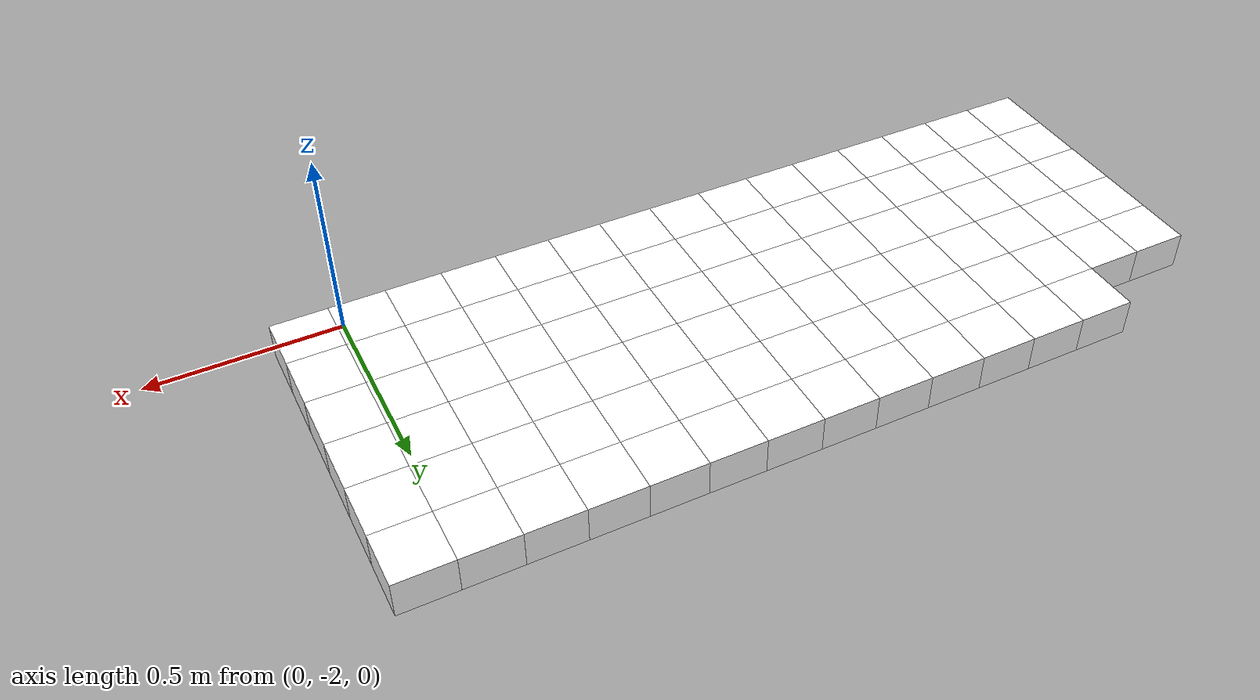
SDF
<sdf version="1.7">
 <world name="default">
  <include><uri>model://sun</uri></include>
  <model name="static_environment">
   <static>true</static>
   <link name="region_13">
    <pose>-2.0001735117499164 -1.349999992280428 0.0 0.0 0.0 4.7123</pose>
    <collision name="region_13_collision">
     <geometry><box><size>0.15 0.15 0.1</size></box></geometry>
     <surface><friction><ode><mu>1.0</mu><mu2>1.0</mu2></ode></friction></surface>
    </collision>
    <visual name="region_13_visual">
     <geometry><box><size>0.15 0.15 0.1</size></box></geometry>
     <material><ambient>1.0 1.0 1.0 1.0</ambient><diffuse>1.0 1.0 1.0 1.0</diffuse></material>
    </visual>
   </link>
   <link name="region_14">
    <pose>-2.000186858807602 -1.499999991686615 0.0 0.0 0.0 4.7123</pose>
    <collision name="region_14_collision">
     <geometry><box><size>0.15 0.15 0.1</size></box></geometry>
     <surface><friction><ode><mu>1.0</mu><mu2>1.0</mu2></ode></friction></surface>
    </collision>
    <visual name="region_14_visual">
     <geometry><box><size>0.15 0.15 0.1</size></box></geometry>
     <material><ambient>1.0 1.0 1.0 1.0</ambient><diffuse>1.0 1.0 1.0 1.0</diffuse></material>
    </visual>
   </link>
   <link name="region_15">
    <pose>-2.0002002058652883 -1.6499999910928018 0.0 0.0 0.0 4.7123</pose>
    <collision name="region_15_collision">
     <geometry><box><size>0.15 0.15 0.1</size></box></geometry>
     <surface><friction><ode><mu>1.0</mu><mu2>1.0</mu2></ode></friction></surface>
    </collision>
    <visual name="region_15_visual">
     <geometry><box><size>0.15 0.15 0.1</size></box></geometry>
     <material><ambient>1.0 1.0 1.0 1.0</ambient><diffuse>1.0 1.0 1.0 1.0</diffuse></material>
    </visual>
   </link>
   <link name="region_16">
    <pose>-2.000213552922974 -1.7999999904989883 0.0 0.0 0.0 4.7123</pose>
    <collision name="region_16_collision">
     <geometry><box><size>0.15 0.15 0.1</size></box></geometry>
     <surface><friction><ode><mu>1.0</mu><mu2>1.0</mu2></ode></friction></surface>
    </collision>
    <visual name="region_16_visual">
     <geometry><box><size>0.15 0.15 0.1</size></box></geometry>
     <material><ambient>1.0 1.0 1.0 1.0</ambient><diffuse>1.0 1.0 1.0 1.0</diffuse></material>
    </visual>
   </link>
   <link name="region_17">
    <pose>-2.00022689998066 -1.9499999899051752 0.0 0.0 0.0 4.7123</pose>
    <collision name="region_17_collision">
     <geometry><box><size>0.15 0.15 0.1</size></box></geometry>
     <surface><friction><ode><mu>1.0</mu><mu2>1.0</mu2></ode></friction></surface>
    </collision>
    <visual name="region_17_visual">
     <geometry><box><size>0.15 0.15 0.1</size></box></geometry>
     <material><ambient>1.0 1.0 1.0 1.0</ambient><diffuse>1.0 1.0 1.0 1.0</diffuse></material>
    </visual>
   </link>
   <link name="region_33">
    <pose>-1.8501735123437295 -1.3500133393381142 0.0 0.0 0.0 4.7123</pose>
    <collision name="region_33_collision">
     <geometry><box><size>0.15 0.15 0.1</size></box></geometry>
     <surface><friction><ode><mu>1.0</mu><mu2>1.0</mu2></ode></friction></surface>
    </collision>
    <visual name="region_33_visual">
     <geometry><box><size>0.15 0.15 0.1</size></box></geometry>
     <material><ambient>1.0 1.0 1.0 1.0</ambient><diffuse>1.0 1.0 1.0 1.0</diffuse></material>
    </visual>
   </link>
   <link name="region_34">
    <pose>-1.8501868594014155 -1.500013338744301 0.0 0.0 0.0 4.7123</pose>
    <collision name="region_34_collision">
     <geometry><box><size>0.15 0.15 0.1</size></box></geometry>
     <surface><friction><ode><mu>1.0</mu><mu2>1.0</mu2></ode></friction></surface>
    </collision>
    <visual name="region_34_visual">
     <geometry><box><size>0.15 0.15 0.1</size></box></geometry>
     <material><ambient>1.0 1.0 1.0 1.0</ambient><diffuse>1.0 1.0 1.0 1.0</diffuse></material>
    </visual>
   </link>
   <link name="region_35">
    <pose>-1.8502002064591014 -1.6500133381504876 0.0 0.0 0.0 4.7123</pose>
    <collision name="region_35_collision">
     <geometry><box><size>0.15 0.15 0.1</size></box></geometry>
     <surface><friction><ode><mu>1.0</mu><mu2>1.0</mu2></ode></friction></surface>
    </collision>
    <visual name="region_35_visual">
     <geometry><box><size>0.15 0.15 0.1</size></box></geometry>
     <material><ambient>1.0 1.0 1.0 1.0</ambient><diffuse>1.0 1.0 1.0 1.0</diffuse></material>
    </visual>
   </link>
   <link name="region_36">
    <pose>-1.8502135535167872 -1.8000133375566745 0.0 0.0 0.0 4.7123</pose>
    <collision name="region_36_collision">
     <geometry><box><size>0.15 0.15 0.1</size></box></geometry>
     <surface><friction><ode><mu>1.0</mu><mu2>1.0</mu2></ode></friction></surface>
    </collision>
    <visual name="region_36_visual">
     <geometry><box><size>0.15 0.15 0.1</size></box></geometry>
     <material><ambient>1.0 1.0 1.0 1.0</ambient><diffuse>1.0 1.0 1.0 1.0</diffuse></material>
    </visual>
   </link>
   <link name="region_37">
    <pose>-1.8502269005744731 -1.950013336962861 0.0 0.0 0.0 4.7123</pose>
    <collision name="region_37_collision">
     <geometry><box><size>0.15 0.15 0.1</size></box></geometry>
     <surface><friction><ode><mu>1.0</mu><mu2>1.0</mu2></ode></friction></surface>
    </collision>
    <visual name="region_37_visual">
     <geometry><box><size>0.15 0.15 0.1</size></box></geometry>
     <material><ambient>1.0 1.0 1.0 1.0</ambient><diffuse>1.0 1.0 1.0 1.0</diffuse></material>
    </visual>
   </link>
   <link name="region_52">
    <pose>-1.7001601658798569 -1.200026686989613 0.0 0.0 0.0 4.7123</pose>
    <collision name="region_52_collision">
     <geometry><box><size>0.15 0.15 0.1</size></box></geometry>
     <surface><friction><ode><mu>1.0</mu><mu2>1.0</mu2></ode></friction></surface>
    </collision>
    <visual name="region_52_visual">
     <geometry><box><size>0.15 0.15 0.1</size></box></geometry>
     <material><ambient>1.0 1.0 1.0 1.0</ambient><diffuse>1.0 1.0 1.0 1.0</diffuse></material>
    </visual>
   </link>
   <link name="region_53">
    <pose>-1.7001735129375428 -1.3500266863958 0.0 0.0 0.0 4.7123</pose>
    <collision name="region_53_collision">
     <geometry><box><size>0.15 0.15 0.1</size></box></geometry>
     <surface><friction><ode><mu>1.0</mu><mu2>1.0</mu2></ode></friction></surface>
    </collision>
    <visual name="region_53_visual">
     <geometry><box><size>0.15 0.15 0.1</size></box></geometry>
     <material><ambient>1.0 1.0 1.0 1.0</ambient><diffuse>1.0 1.0 1.0 1.0</diffuse></material>
    </visual>
   </link>
   <link name="region_54">
    <pose>-1.7001868599952288 -1.5000266858019868 0.0 0.0 0.0 4.7123</pose>
    <collision name="region_54_collision">
     <geometry><box><size>0.15 0.15 0.1</size></box></geometry>
     <surface><friction><ode><mu>1.0</mu><mu2>1.0</mu2></ode></friction></surface>
    </collision>
    <visual name="region_54_visual">
     <geometry><box><size>0.15 0.15 0.1</size></box></geometry>
     <material><ambient>1.0 1.0 1.0 1.0</ambient><diffuse>1.0 1.0 1.0 1.0</diffuse></material>
    </visual>
   </link>
   <link name="region_55">
    <pose>-1.7002002070529145 -1.6500266852081733 0.0 0.0 0.0 4.7123</pose>
    <collision name="region_55_collision">
     <geometry><box><size>0.15 0.15 0.1</size></box></geometry>
     <surface><friction><ode><mu>1.0</mu><mu2>1.0</mu2></ode></friction></surface>
    </collision>
    <visual name="region_55_visual">
     <geometry><box><size>0.15 0.15 0.1</size></box></geometry>
     <material><ambient>1.0 1.0 1.0 1.0</ambient><diffuse>1.0 1.0 1.0 1.0</diffuse></material>
    </visual>
   </link>
   <link name="region_56">
    <pose>-1.7002135541106005 -1.8000266846143602 0.0 0.0 0.0 4.7123</pose>
    <collision name="region_56_collision">
     <geometry><box><size>0.15 0.15 0.1</size></box></geometry>
     <surface><friction><ode><mu>1.0</mu><mu2>1.0</mu2></ode></friction></surface>
    </collision>
    <visual name="region_56_visual">
     <geometry><box><size>0.15 0.15 0.1</size></box></geometry>
     <material><ambient>1.0 1.0 1.0 1.0</ambient><diffuse>1.0 1.0 1.0 1.0</diffuse></material>
    </visual>
   </link>
   <link name="region_57">
    <pose>-1.7002269011682862 -1.9500266840205471 0.0 0.0 0.0 4.7123</pose>
    <collision name="region_57_collision">
     <geometry><box><size>0.15 0.15 0.1</size></box></geometry>
     <surface><friction><ode><mu>1.0</mu><mu2>1.0</mu2></ode></friction></surface>
    </collision>
    <visual name="region_57_visual">
     <geometry><box><size>0.15 0.15 0.1</size></box></geometry>
     <material><ambient>1.0 1.0 1.0 1.0</ambient><diffuse>1.0 1.0 1.0 1.0</diffuse></material>
    </visual>
   </link>
   <link name="region_72">
    <pose>-1.5501601664736702 -1.2000400340472992 0.0 0.0 0.0 4.7123</pose>
    <collision name="region_72_collision">
     <geometry><box><size>0.15 0.15 0.1</size></box></geometry>
     <surface><friction><ode><mu>1.0</mu><mu2>1.0</mu2></ode></friction></surface>
    </collision>
    <visual name="region_72_visual">
     <geometry><box><size>0.15 0.15 0.1</size></box></geometry>
     <material><ambient>1.0 1.0 1.0 1.0</ambient><diffuse>1.0 1.0 1.0 1.0</diffuse></material>
    </visual>
   </link>
   <link name="region_73">
    <pose>-1.550173513531356 -1.3500400334534857 0.0 0.0 0.0 4.7123</pose>
    <collision name="region_73_collision">
     <geometry><box><size>0.15 0.15 0.1</size></box></geometry>
     <surface><friction><ode><mu>1.0</mu><mu2>1.0</mu2></ode></friction></surface>
    </collision>
    <visual name="region_73_visual">
     <geometry><box><size>0.15 0.15 0.1</size></box></geometry>
     <material><ambient>1.0 1.0 1.0 1.0</ambient><diffuse>1.0 1.0 1.0 1.0</diffuse></material>
    </visual>
   </link>
   <link name="region_74">
    <pose>-1.5501868605890419 -1.5000400328596726 0.0 0.0 0.0 4.7123</pose>
    <collision name="region_74_collision">
     <geometry><box><size>0.15 0.15 0.1</size></box></geometry>
     <surface><friction><ode><mu>1.0</mu><mu2>1.0</mu2></ode></friction></surface>
    </collision>
    <visual name="region_74_visual">
     <geometry><box><size>0.15 0.15 0.1</size></box></geometry>
     <material><ambient>1.0 1.0 1.0 1.0</ambient><diffuse>1.0 1.0 1.0 1.0</diffuse></material>
    </visual>
   </link>
   <link name="region_75">
    <pose>-1.5502002076467276 -1.6500400322658595 0.0 0.0 0.0 4.7123</pose>
    <collision name="region_75_collision">
     <geometry><box><size>0.15 0.15 0.1</size></box></geometry>
     <surface><friction><ode><mu>1.0</mu><mu2>1.0</mu2></ode></friction></surface>
    </collision>
    <visual name="region_75_visual">
     <geometry><box><size>0.15 0.15 0.1</size></box></geometry>
     <material><ambient>1.0 1.0 1.0 1.0</ambient><diffuse>1.0 1.0 1.0 1.0</diffuse></material>
    </visual>
   </link>
   <link name="region_76">
    <pose>-1.5502135547044136 -1.800040031672046 0.0 0.0 0.0 4.7123</pose>
    <collision name="region_76_collision">
     <geometry><box><size>0.15 0.15 0.1</size></box></geometry>
     <surface><friction><ode><mu>1.0</mu><mu2>1.0</mu2></ode></friction></surface>
    </collision>
    <visual name="region_76_visual">
     <geometry><box><size>0.15 0.15 0.1</size></box></geometry>
     <material><ambient>1.0 1.0 1.0 1.0</ambient><diffuse>1.0 1.0 1.0 1.0</diffuse></material>
    </visual>
   </link>
   <link name="region_77">
    <pose>-1.5502269017620995 -1.9500400310782329 0.0 0.0 0.0 4.7123</pose>
    <collision name="region_77_collision">
     <geometry><box><size>0.15 0.15 0.1</size></box></geometry>
     <surface><friction><ode><mu>1.0</mu><mu2>1.0</mu2></ode></friction></surface>
    </collision>
    <visual name="region_77_visual">
     <geometry><box><size>0.15 0.15 0.1</size></box></geometry>
     <material><ambient>1.0 1.0 1.0 1.0</ambient><diffuse>1.0 1.0 1.0 1.0</diffuse></material>
    </visual>
   </link>
   <link name="region_92">
    <pose>-1.4001601670674833 -1.200053381104985 0.0 0.0 0.0 4.7123</pose>
    <collision name="region_92_collision">
     <geometry><box><size>0.15 0.15 0.1</size></box></geometry>
     <surface><friction><ode><mu>1.0</mu><mu2>1.0</mu2></ode></friction></surface>
    </collision>
    <visual name="region_92_visual">
     <geometry><box><size>0.15 0.15 0.1</size></box></geometry>
     <material><ambient>1.0 1.0 1.0 1.0</ambient><diffuse>1.0 1.0 1.0 1.0</diffuse></material>
    </visual>
   </link>
   <link name="region_93">
    <pose>-1.4001735141251692 -1.3500533805111719 0.0 0.0 0.0 4.7123</pose>
    <collision name="region_93_collision">
     <geometry><box><size>0.15 0.15 0.1</size></box></geometry>
     <surface><friction><ode><mu>1.0</mu><mu2>1.0</mu2></ode></friction></surface>
    </collision>
    <visual name="region_93_visual">
     <geometry><box><size>0.15 0.15 0.1</size></box></geometry>
     <material><ambient>1.0 1.0 1.0 1.0</ambient><diffuse>1.0 1.0 1.0 1.0</diffuse></material>
    </visual>
   </link>
   <link name="region_94">
    <pose>-1.400186861182855 -1.5000533799173583 0.0 0.0 0.0 4.7123</pose>
    <collision name="region_94_collision">
     <geometry><box><size>0.15 0.15 0.1</size></box></geometry>
     <surface><friction><ode><mu>1.0</mu><mu2>1.0</mu2></ode></friction></surface>
    </collision>
    <visual name="region_94_visual">
     <geometry><box><size>0.15 0.15 0.1</size></box></geometry>
     <material><ambient>1.0 1.0 1.0 1.0</ambient><diffuse>1.0 1.0 1.0 1.0</diffuse></material>
    </visual>
   </link>
   <link name="region_95">
    <pose>-1.400200208240541 -1.6500533793235452 0.0 0.0 0.0 4.7123</pose>
    <collision name="region_95_collision">
     <geometry><box><size>0.15 0.15 0.1</size></box></geometry>
     <surface><friction><ode><mu>1.0</mu><mu2>1.0</mu2></ode></friction></surface>
    </collision>
    <visual name="region_95_visual">
     <geometry><box><size>0.15 0.15 0.1</size></box></geometry>
     <material><ambient>1.0 1.0 1.0 1.0</ambient><diffuse>1.0 1.0 1.0 1.0</diffuse></material>
    </visual>
   </link>
   <link name="region_96">
    <pose>-1.4002135552982269 -1.8000533787297321 0.0 0.0 0.0 4.7123</pose>
    <collision name="region_96_collision">
     <geometry><box><size>0.15 0.15 0.1</size></box></geometry>
     <surface><friction><ode><mu>1.0</mu><mu2>1.0</mu2></ode></friction></surface>
    </collision>
    <visual name="region_96_visual">
     <geometry><box><size>0.15 0.15 0.1</size></box></geometry>
     <material><ambient>1.0 1.0 1.0 1.0</ambient><diffuse>1.0 1.0 1.0 1.0</diffuse></material>
    </visual>
   </link>
   <link name="region_97">
    <pose>-1.4002269023559126 -1.9500533781359186 0.0 0.0 0.0 4.7123</pose>
    <collision name="region_97_collision">
     <geometry><box><size>0.15 0.15 0.1</size></box></geometry>
     <surface><friction><ode><mu>1.0</mu><mu2>1.0</mu2></ode></friction></surface>
    </collision>
    <visual name="region_97_visual">
     <geometry><box><size>0.15 0.15 0.1</size></box></geometry>
     <material><ambient>1.0 1.0 1.0 1.0</ambient><diffuse>1.0 1.0 1.0 1.0</diffuse></material>
    </visual>
   </link>
   <link name="region_112">
    <pose>-1.2501601676612963 -1.2000667281626707 0.0 0.0 0.0 4.7123</pose>
    <collision name="region_112_collision">
     <geometry><box><size>0.15 0.15 0.1</size></box></geometry>
     <surface><friction><ode><mu>1.0</mu><mu2>1.0</mu2></ode></friction></surface>
    </collision>
    <visual name="region_112_visual">
     <geometry><box><size>0.15 0.15 0.1</size></box></geometry>
     <material><ambient>1.0 1.0 1.0 1.0</ambient><diffuse>1.0 1.0 1.0 1.0</diffuse></material>
    </visual>
   </link>
   <link name="region_113">
    <pose>-1.2501735147189823 -1.3500667275688576 0.0 0.0 0.0 4.7123</pose>
    <collision name="region_113_collision">
     <geometry><box><size>0.15 0.15 0.1</size></box></geometry>
     <surface><friction><ode><mu>1.0</mu><mu2>1.0</mu2></ode></friction></surface>
    </collision>
    <visual name="region_113_visual">
     <geometry><box><size>0.15 0.15 0.1</size></box></geometry>
     <material><ambient>1.0 1.0 1.0 1.0</ambient><diffuse>1.0 1.0 1.0 1.0</diffuse></material>
    </visual>
   </link>
   <link name="region_114">
    <pose>-1.250186861776668 -1.5000667269750445 0.0 0.0 0.0 4.7123</pose>
    <collision name="region_114_collision">
     <geometry><box><size>0.15 0.15 0.1</size></box></geometry>
     <surface><friction><ode><mu>1.0</mu><mu2>1.0</mu2></ode></friction></surface>
    </collision>
    <visual name="region_114_visual">
     <geometry><box><size>0.15 0.15 0.1</size></box></geometry>
     <material><ambient>1.0 1.0 1.0 1.0</ambient><diffuse>1.0 1.0 1.0 1.0</diffuse></material>
    </visual>
   </link>
   <link name="region_115">
    <pose>-1.250200208834354 -1.650066726381231 0.0 0.0 0.0 4.7123</pose>
    <collision name="region_115_collision">
     <geometry><box><size>0.15 0.15 0.1</size></box></geometry>
     <surface><friction><ode><mu>1.0</mu><mu2>1.0</mu2></ode></friction></surface>
    </collision>
    <visual name="region_115_visual">
     <geometry><box><size>0.15 0.15 0.1</size></box></geometry>
     <material><ambient>1.0 1.0 1.0 1.0</ambient><diffuse>1.0 1.0 1.0 1.0</diffuse></material>
    </visual>
   </link>
   <link name="region_116">
    <pose>-1.25021355589204 -1.8000667257874179 0.0 0.0 0.0 4.7123</pose>
    <collision name="region_116_collision">
     <geometry><box><size>0.15 0.15 0.1</size></box></geometry>
     <surface><friction><ode><mu>1.0</mu><mu2>1.0</mu2></ode></friction></surface>
    </collision>
    <visual name="region_116_visual">
     <geometry><box><size>0.15 0.15 0.1</size></box></geometry>
     <material><ambient>1.0 1.0 1.0 1.0</ambient><diffuse>1.0 1.0 1.0 1.0</diffuse></material>
    </visual>
   </link>
   <link name="region_117">
    <pose>-1.2502269029497257 -1.9500667251936044 0.0 0.0 0.0 4.7123</pose>
    <collision name="region_117_collision">
     <geometry><box><size>0.15 0.15 0.1</size></box></geometry>
     <surface><friction><ode><mu>1.0</mu><mu2>1.0</mu2></ode></friction></surface>
    </collision>
    <visual name="region_117_visual">
     <geometry><box><size>0.15 0.15 0.1</size></box></geometry>
     <material><ambient>1.0 1.0 1.0 1.0</ambient><diffuse>1.0 1.0 1.0 1.0</diffuse></material>
    </visual>
   </link>
   <link name="region_132">
    <pose>-1.1001601682551096 -1.2000800752203569 0.0 0.0 0.0 4.7123</pose>
    <collision name="region_132_collision">
     <geometry><box><size>0.15 0.15 0.1</size></box></geometry>
     <surface><friction><ode><mu>1.0</mu><mu2>1.0</mu2></ode></friction></surface>
    </collision>
    <visual name="region_132_visual">
     <geometry><box><size>0.15 0.15 0.1</size></box></geometry>
     <material><ambient>1.0 1.0 1.0 1.0</ambient><diffuse>1.0 1.0 1.0 1.0</diffuse></material>
    </visual>
   </link>
   <link name="region_133">
    <pose>-1.1001735153127954 -1.3500800746265433 0.0 0.0 0.0 4.7123</pose>
    <collision name="region_133_collision">
     <geometry><box><size>0.15 0.15 0.1</size></box></geometry>
     <surface><friction><ode><mu>1.0</mu><mu2>1.0</mu2></ode></friction></surface>
    </collision>
    <visual name="region_133_visual">
     <geometry><box><size>0.15 0.15 0.1</size></box></geometry>
     <material><ambient>1.0 1.0 1.0 1.0</ambient><diffuse>1.0 1.0 1.0 1.0</diffuse></material>
    </visual>
   </link>
   <link name="region_134">
    <pose>-1.1001868623704814 -1.5000800740327302 0.0 0.0 0.0 4.7123</pose>
    <collision name="region_134_collision">
     <geometry><box><size>0.15 0.15 0.1</size></box></geometry>
     <surface><friction><ode><mu>1.0</mu><mu2>1.0</mu2></ode></friction></surface>
    </collision>
    <visual name="region_134_visual">
     <geometry><box><size>0.15 0.15 0.1</size></box></geometry>
     <material><ambient>1.0 1.0 1.0 1.0</ambient><diffuse>1.0 1.0 1.0 1.0</diffuse></material>
    </visual>
   </link>
   <link name="region_135">
    <pose>-1.1002002094281673 -1.6500800734389172 0.0 0.0 0.0 4.7123</pose>
    <collision name="region_135_collision">
     <geometry><box><size>0.15 0.15 0.1</size></box></geometry>
     <surface><friction><ode><mu>1.0</mu><mu2>1.0</mu2></ode></friction></surface>
    </collision>
    <visual name="region_135_visual">
     <geometry><box><size>0.15 0.15 0.1</size></box></geometry>
     <material><ambient>1.0 1.0 1.0 1.0</ambient><diffuse>1.0 1.0 1.0 1.0</diffuse></material>
    </visual>
   </link>
   <link name="region_136">
    <pose>-1.100213556485853 -1.8000800728451036 0.0 0.0 0.0 4.7123</pose>
    <collision name="region_136_collision">
     <geometry><box><size>0.15 0.15 0.1</size></box></geometry>
     <surface><friction><ode><mu>1.0</mu><mu2>1.0</mu2></ode></friction></surface>
    </collision>
    <visual name="region_136_visual">
     <geometry><box><size>0.15 0.15 0.1</size></box></geometry>
     <material><ambient>1.0 1.0 1.0 1.0</ambient><diffuse>1.0 1.0 1.0 1.0</diffuse></material>
    </visual>
   </link>
   <link name="region_137">
    <pose>-1.100226903543539 -1.9500800722512905 0.0 0.0 0.0 4.7123</pose>
    <collision name="region_137_collision">
     <geometry><box><size>0.15 0.15 0.1</size></box></geometry>
     <surface><friction><ode><mu>1.0</mu><mu2>1.0</mu2></ode></friction></surface>
    </collision>
    <visual name="region_137_visual">
     <geometry><box><size>0.15 0.15 0.1</size></box></geometry>
     <material><ambient>1.0 1.0 1.0 1.0</ambient><diffuse>1.0 1.0 1.0 1.0</diffuse></material>
    </visual>
   </link>
   <link name="region_152">
    <pose>-0.9501601688489227 -1.2000934222780426 0.0 0.0 0.0 4.7123</pose>
    <collision name="region_152_collision">
     <geometry><box><size>0.15 0.15 0.1</size></box></geometry>
     <surface><friction><ode><mu>1.0</mu><mu2>1.0</mu2></ode></friction></surface>
    </collision>
    <visual name="region_152_visual">
     <geometry><box><size>0.15 0.15 0.1</size></box></geometry>
     <material><ambient>1.0 1.0 1.0 1.0</ambient><diffuse>1.0 1.0 1.0 1.0</diffuse></material>
    </visual>
   </link>
   <link name="region_153">
    <pose>-0.9501735159066087 -1.3500934216842295 0.0 0.0 0.0 4.7123</pose>
    <collision name="region_153_collision">
     <geometry><box><size>0.15 0.15 0.1</size></box></geometry>
     <surface><friction><ode><mu>1.0</mu><mu2>1.0</mu2></ode></friction></surface>
    </collision>
    <visual name="region_153_visual">
     <geometry><box><size>0.15 0.15 0.1</size></box></geometry>
     <material><ambient>1.0 1.0 1.0 1.0</ambient><diffuse>1.0 1.0 1.0 1.0</diffuse></material>
    </visual>
   </link>
   <link name="region_154">
    <pose>-0.9501868629642944 -1.500093421090416 0.0 0.0 0.0 4.7123</pose>
    <collision name="region_154_collision">
     <geometry><box><size>0.15 0.15 0.1</size></box></geometry>
     <surface><friction><ode><mu>1.0</mu><mu2>1.0</mu2></ode></friction></surface>
    </collision>
    <visual name="region_154_visual">
     <geometry><box><size>0.15 0.15 0.1</size></box></geometry>
     <material><ambient>1.0 1.0 1.0 1.0</ambient><diffuse>1.0 1.0 1.0 1.0</diffuse></material>
    </visual>
   </link>
   <link name="region_155">
    <pose>-0.9502002100219804 -1.650093420496603 0.0 0.0 0.0 4.7123</pose>
    <collision name="region_155_collision">
     <geometry><box><size>0.15 0.15 0.1</size></box></geometry>
     <surface><friction><ode><mu>1.0</mu><mu2>1.0</mu2></ode></friction></surface>
    </collision>
    <visual name="region_155_visual">
     <geometry><box><size>0.15 0.15 0.1</size></box></geometry>
     <material><ambient>1.0 1.0 1.0 1.0</ambient><diffuse>1.0 1.0 1.0 1.0</diffuse></material>
    </visual>
   </link>
   <link name="region_156">
    <pose>-0.9502135570796664 -1.8000934199027898 0.0 0.0 0.0 4.7123</pose>
    <collision name="region_156_collision">
     <geometry><box><size>0.15 0.15 0.1</size></box></geometry>
     <surface><friction><ode><mu>1.0</mu><mu2>1.0</mu2></ode></friction></surface>
    </collision>
    <visual name="region_156_visual">
     <geometry><box><size>0.15 0.15 0.1</size></box></geometry>
     <material><ambient>1.0 1.0 1.0 1.0</ambient><diffuse>1.0 1.0 1.0 1.0</diffuse></material>
    </visual>
   </link>
   <link name="region_157">
    <pose>-0.9502269041373521 -1.9500934193089763 0.0 0.0 0.0 4.7123</pose>
    <collision name="region_157_collision">
     <geometry><box><size>0.15 0.15 0.1</size></box></geometry>
     <surface><friction><ode><mu>1.0</mu><mu2>1.0</mu2></ode></friction></surface>
    </collision>
    <visual name="region_157_visual">
     <geometry><box><size>0.15 0.15 0.1</size></box></geometry>
     <material><ambient>1.0 1.0 1.0 1.0</ambient><diffuse>1.0 1.0 1.0 1.0</diffuse></material>
    </visual>
   </link>
   <link name="region_172">
    <pose>-0.800160169442736 -1.2001067693357284 0.0 0.0 0.0 4.7123</pose>
    <collision name="region_172_collision">
     <geometry><box><size>0.15 0.15 0.1</size></box></geometry>
     <surface><friction><ode><mu>1.0</mu><mu2>1.0</mu2></ode></friction></surface>
    </collision>
    <visual name="region_172_visual">
     <geometry><box><size>0.15 0.15 0.1</size></box></geometry>
     <material><ambient>1.0 1.0 1.0 1.0</ambient><diffuse>1.0 1.0 1.0 1.0</diffuse></material>
    </visual>
   </link>
   <link name="region_173">
    <pose>-0.800173516500422 -1.3501067687419153 0.0 0.0 0.0 4.7123</pose>
    <collision name="region_173_collision">
     <geometry><box><size>0.15 0.15 0.1</size></box></geometry>
     <surface><friction><ode><mu>1.0</mu><mu2>1.0</mu2></ode></friction></surface>
    </collision>
    <visual name="region_173_visual">
     <geometry><box><size>0.15 0.15 0.1</size></box></geometry>
     <material><ambient>1.0 1.0 1.0 1.0</ambient><diffuse>1.0 1.0 1.0 1.0</diffuse></material>
    </visual>
   </link>
   <link name="region_174">
    <pose>-0.8001868635581078 -1.5001067681481022 0.0 0.0 0.0 4.7123</pose>
    <collision name="region_174_collision">
     <geometry><box><size>0.15 0.15 0.1</size></box></geometry>
     <surface><friction><ode><mu>1.0</mu><mu2>1.0</mu2></ode></friction></surface>
    </collision>
    <visual name="region_174_visual">
     <geometry><box><size>0.15 0.15 0.1</size></box></geometry>
     <material><ambient>1.0 1.0 1.0 1.0</ambient><diffuse>1.0 1.0 1.0 1.0</diffuse></material>
    </visual>
   </link>
   <link name="region_175">
    <pose>-0.8002002106157937 -1.6501067675542886 0.0 0.0 0.0 4.7123</pose>
    <collision name="region_175_collision">
     <geometry><box><size>0.15 0.15 0.1</size></box></geometry>
     <surface><friction><ode><mu>1.0</mu><mu2>1.0</mu2></ode></friction></surface>
    </collision>
    <visual name="region_175_visual">
     <geometry><box><size>0.15 0.15 0.1</size></box></geometry>
     <material><ambient>1.0 1.0 1.0 1.0</ambient><diffuse>1.0 1.0 1.0 1.0</diffuse></material>
    </visual>
   </link>
   <link name="region_176">
    <pose>-0.8002135576734797 -1.8001067669604756 0.0 0.0 0.0 4.7123</pose>
    <collision name="region_176_collision">
     <geometry><box><size>0.15 0.15 0.1</size></box></geometry>
     <surface><friction><ode><mu>1.0</mu><mu2>1.0</mu2></ode></friction></surface>
    </collision>
    <visual name="region_176_visual">
     <geometry><box><size>0.15 0.15 0.1</size></box></geometry>
     <material><ambient>1.0 1.0 1.0 1.0</ambient><diffuse>1.0 1.0 1.0 1.0</diffuse></material>
    </visual>
   </link>
   <link name="region_177">
    <pose>-0.8002269047311654 -1.950106766366662 0.0 0.0 0.0 4.7123</pose>
    <collision name="region_177_collision">
     <geometry><box><size>0.15 0.15 0.1</size></box></geometry>
     <surface><friction><ode><mu>1.0</mu><mu2>1.0</mu2></ode></friction></surface>
    </collision>
    <visual name="region_177_visual">
     <geometry><box><size>0.15 0.15 0.1</size></box></geometry>
     <material><ambient>1.0 1.0 1.0 1.0</ambient><diffuse>1.0 1.0 1.0 1.0</diffuse></material>
    </visual>
   </link>
   <link name="region_192">
    <pose>-0.6501601700365491 -1.2001201163934145 0.0 0.0 0.0 4.7123</pose>
    <collision name="region_192_collision">
     <geometry><box><size>0.15 0.15 0.1</size></box></geometry>
     <surface><friction><ode><mu>1.0</mu><mu2>1.0</mu2></ode></friction></surface>
    </collision>
    <visual name="region_192_visual">
     <geometry><box><size>0.15 0.15 0.1</size></box></geometry>
     <material><ambient>1.0 1.0 1.0 1.0</ambient><diffuse>1.0 1.0 1.0 1.0</diffuse></material>
    </visual>
   </link>
   <link name="region_193">
    <pose>-0.6501735170942351 -1.350120115799601 0.0 0.0 0.0 4.7123</pose>
    <collision name="region_193_collision">
     <geometry><box><size>0.15 0.15 0.1</size></box></geometry>
     <surface><friction><ode><mu>1.0</mu><mu2>1.0</mu2></ode></friction></surface>
    </collision>
    <visual name="region_193_visual">
     <geometry><box><size>0.15 0.15 0.1</size></box></geometry>
     <material><ambient>1.0 1.0 1.0 1.0</ambient><diffuse>1.0 1.0 1.0 1.0</diffuse></material>
    </visual>
   </link>
   <link name="region_194">
    <pose>-0.6501868641519208 -1.500120115205788 0.0 0.0 0.0 4.7123</pose>
    <collision name="region_194_collision">
     <geometry><box><size>0.15 0.15 0.1</size></box></geometry>
     <surface><friction><ode><mu>1.0</mu><mu2>1.0</mu2></ode></friction></surface>
    </collision>
    <visual name="region_194_visual">
     <geometry><box><size>0.15 0.15 0.1</size></box></geometry>
     <material><ambient>1.0 1.0 1.0 1.0</ambient><diffuse>1.0 1.0 1.0 1.0</diffuse></material>
    </visual>
   </link>
   <link name="region_195">
    <pose>-0.6502002112096068 -1.6501201146119748 0.0 0.0 0.0 4.7123</pose>
    <collision name="region_195_collision">
     <geometry><box><size>0.15 0.15 0.1</size></box></geometry>
     <surface><friction><ode><mu>1.0</mu><mu2>1.0</mu2></ode></friction></surface>
    </collision>
    <visual name="region_195_visual">
     <geometry><box><size>0.15 0.15 0.1</size></box></geometry>
     <material><ambient>1.0 1.0 1.0 1.0</ambient><diffuse>1.0 1.0 1.0 1.0</diffuse></material>
    </visual>
   </link>
   <link name="region_196">
    <pose>-0.6502135582672928 -1.8001201140181613 0.0 0.0 0.0 4.7123</pose>
    <collision name="region_196_collision">
     <geometry><box><size>0.15 0.15 0.1</size></box></geometry>
     <surface><friction><ode><mu>1.0</mu><mu2>1.0</mu2></ode></friction></surface>
    </collision>
    <visual name="region_196_visual">
     <geometry><box><size>0.15 0.15 0.1</size></box></geometry>
     <material><ambient>1.0 1.0 1.0 1.0</ambient><diffuse>1.0 1.0 1.0 1.0</diffuse></material>
    </visual>
   </link>
   <link name="region_197">
    <pose>-0.6502269053249785 -1.9501201134243482 0.0 0.0 0.0 4.7123</pose>
    <collision name="region_197_collision">
     <geometry><box><size>0.15 0.15 0.1</size></box></geometry>
     <surface><friction><ode><mu>1.0</mu><mu2>1.0</mu2></ode></friction></surface>
    </collision>
    <visual name="region_197_visual">
     <geometry><box><size>0.15 0.15 0.1</size></box></geometry>
     <material><ambient>1.0 1.0 1.0 1.0</ambient><diffuse>1.0 1.0 1.0 1.0</diffuse></material>
    </visual>
   </link>
   <link name="region_212">
    <pose>-0.5001601706303624 -1.2001334634511003 0.0 0.0 0.0 4.7123</pose>
    <collision name="region_212_collision">
     <geometry><box><size>0.15 0.15 0.1</size></box></geometry>
     <surface><friction><ode><mu>1.0</mu><mu2>1.0</mu2></ode></friction></surface>
    </collision>
    <visual name="region_212_visual">
     <geometry><box><size>0.15 0.15 0.1</size></box></geometry>
     <material><ambient>1.0 1.0 1.0 1.0</ambient><diffuse>1.0 1.0 1.0 1.0</diffuse></material>
    </visual>
   </link>
   <link name="region_213">
    <pose>-0.5001735176880484 -1.3501334628572867 0.0 0.0 0.0 4.7123</pose>
    <collision name="region_213_collision">
     <geometry><box><size>0.15 0.15 0.1</size></box></geometry>
     <surface><friction><ode><mu>1.0</mu><mu2>1.0</mu2></ode></friction></surface>
    </collision>
    <visual name="region_213_visual">
     <geometry><box><size>0.15 0.15 0.1</size></box></geometry>
     <material><ambient>1.0 1.0 1.0 1.0</ambient><diffuse>1.0 1.0 1.0 1.0</diffuse></material>
    </visual>
   </link>
   <link name="region_214">
    <pose>-0.5001868647457341 -1.5001334622634737 0.0 0.0 0.0 4.7123</pose>
    <collision name="region_214_collision">
     <geometry><box><size>0.15 0.15 0.1</size></box></geometry>
     <surface><friction><ode><mu>1.0</mu><mu2>1.0</mu2></ode></friction></surface>
    </collision>
    <visual name="region_214_visual">
     <geometry><box><size>0.15 0.15 0.1</size></box></geometry>
     <material><ambient>1.0 1.0 1.0 1.0</ambient><diffuse>1.0 1.0 1.0 1.0</diffuse></material>
    </visual>
   </link>
   <link name="region_215">
    <pose>-0.5002002118034201 -1.6501334616696606 0.0 0.0 0.0 4.7123</pose>
    <collision name="region_215_collision">
     <geometry><box><size>0.15 0.15 0.1</size></box></geometry>
     <surface><friction><ode><mu>1.0</mu><mu2>1.0</mu2></ode></friction></surface>
    </collision>
    <visual name="region_215_visual">
     <geometry><box><size>0.15 0.15 0.1</size></box></geometry>
     <material><ambient>1.0 1.0 1.0 1.0</ambient><diffuse>1.0 1.0 1.0 1.0</diffuse></material>
    </visual>
   </link>
   <link name="region_216">
    <pose>-0.5002135588611061 -1.800133461075847 0.0 0.0 0.0 4.7123</pose>
    <collision name="region_216_collision">
     <geometry><box><size>0.15 0.15 0.1</size></box></geometry>
     <surface><friction><ode><mu>1.0</mu><mu2>1.0</mu2></ode></friction></surface>
    </collision>
    <visual name="region_216_visual">
     <geometry><box><size>0.15 0.15 0.1</size></box></geometry>
     <material><ambient>1.0 1.0 1.0 1.0</ambient><diffuse>1.0 1.0 1.0 1.0</diffuse></material>
    </visual>
   </link>
   <link name="region_217">
    <pose>-0.5002269059187918 -1.950133460482034 0.0 0.0 0.0 4.7123</pose>
    <collision name="region_217_collision">
     <geometry><box><size>0.15 0.15 0.1</size></box></geometry>
     <surface><friction><ode><mu>1.0</mu><mu2>1.0</mu2></ode></friction></surface>
    </collision>
    <visual name="region_217_visual">
     <geometry><box><size>0.15 0.15 0.1</size></box></geometry>
     <material><ambient>1.0 1.0 1.0 1.0</ambient><diffuse>1.0 1.0 1.0 1.0</diffuse></material>
    </visual>
   </link>
   <link name="region_232">
    <pose>-0.35016017122417575 -1.200146810508786 0.0 0.0 0.0 4.7123</pose>
    <collision name="region_232_collision">
     <geometry><box><size>0.15 0.15 0.1</size></box></geometry>
     <surface><friction><ode><mu>1.0</mu><mu2>1.0</mu2></ode></friction></surface>
    </collision>
    <visual name="region_232_visual">
     <geometry><box><size>0.15 0.15 0.1</size></box></geometry>
     <material><ambient>1.0 1.0 1.0 1.0</ambient><diffuse>1.0 1.0 1.0 1.0</diffuse></material>
    </visual>
   </link>
   <link name="region_233">
    <pose>-0.3501735182818617 -1.350146809914973 0.0 0.0 0.0 4.7123</pose>
    <collision name="region_233_collision">
     <geometry><box><size>0.15 0.15 0.1</size></box></geometry>
     <surface><friction><ode><mu>1.0</mu><mu2>1.0</mu2></ode></friction></surface>
    </collision>
    <visual name="region_233_visual">
     <geometry><box><size>0.15 0.15 0.1</size></box></geometry>
     <material><ambient>1.0 1.0 1.0 1.0</ambient><diffuse>1.0 1.0 1.0 1.0</diffuse></material>
    </visual>
   </link>
   <link name="region_234">
    <pose>-0.35018686533954746 -1.5001468093211598 0.0 0.0 0.0 4.7123</pose>
    <collision name="region_234_collision">
     <geometry><box><size>0.15 0.15 0.1</size></box></geometry>
     <surface><friction><ode><mu>1.0</mu><mu2>1.0</mu2></ode></friction></surface>
    </collision>
    <visual name="region_234_visual">
     <geometry><box><size>0.15 0.15 0.1</size></box></geometry>
     <material><ambient>1.0 1.0 1.0 1.0</ambient><diffuse>1.0 1.0 1.0 1.0</diffuse></material>
    </visual>
   </link>
   <link name="region_235">
    <pose>-0.3502002123972334 -1.6501468087273463 0.0 0.0 0.0 4.7123</pose>
    <collision name="region_235_collision">
     <geometry><box><size>0.15 0.15 0.1</size></box></geometry>
     <surface><friction><ode><mu>1.0</mu><mu2>1.0</mu2></ode></friction></surface>
    </collision>
    <visual name="region_235_visual">
     <geometry><box><size>0.15 0.15 0.1</size></box></geometry>
     <material><ambient>1.0 1.0 1.0 1.0</ambient><diffuse>1.0 1.0 1.0 1.0</diffuse></material>
    </visual>
   </link>
   <link name="region_236">
    <pose>-0.3502135594549194 -1.8001468081335332 0.0 0.0 0.0 4.7123</pose>
    <collision name="region_236_collision">
     <geometry><box><size>0.15 0.15 0.1</size></box></geometry>
     <surface><friction><ode><mu>1.0</mu><mu2>1.0</mu2></ode></friction></surface>
    </collision>
    <visual name="region_236_visual">
     <geometry><box><size>0.15 0.15 0.1</size></box></geometry>
     <material><ambient>1.0 1.0 1.0 1.0</ambient><diffuse>1.0 1.0 1.0 1.0</diffuse></material>
    </visual>
   </link>
   <link name="region_237">
    <pose>-0.35022690651260513 -1.9501468075397197 0.0 0.0 0.0 4.7123</pose>
    <collision name="region_237_collision">
     <geometry><box><size>0.15 0.15 0.1</size></box></geometry>
     <surface><friction><ode><mu>1.0</mu><mu2>1.0</mu2></ode></friction></surface>
    </collision>
    <visual name="region_237_visual">
     <geometry><box><size>0.15 0.15 0.1</size></box></geometry>
     <material><ambient>1.0 1.0 1.0 1.0</ambient><diffuse>1.0 1.0 1.0 1.0</diffuse></material>
    </visual>
   </link>
   <link name="region_252">
    <pose>-0.20016017181798906 -1.2001601575664718 0.0 0.0 0.0 4.7123</pose>
    <collision name="region_252_collision">
     <geometry><box><size>0.15 0.15 0.1</size></box></geometry>
     <surface><friction><ode><mu>1.0</mu><mu2>1.0</mu2></ode></friction></surface>
    </collision>
    <visual name="region_252_visual">
     <geometry><box><size>0.15 0.15 0.1</size></box></geometry>
     <material><ambient>1.0 1.0 1.0 1.0</ambient><diffuse>1.0 1.0 1.0 1.0</diffuse></material>
    </visual>
   </link>
   <link name="region_253">
    <pose>-0.20017351887567503 -1.3501601569726587 0.0 0.0 0.0 4.7123</pose>
    <collision name="region_253_collision">
     <geometry><box><size>0.15 0.15 0.1</size></box></geometry>
     <surface><friction><ode><mu>1.0</mu><mu2>1.0</mu2></ode></friction></surface>
    </collision>
    <visual name="region_253_visual">
     <geometry><box><size>0.15 0.15 0.1</size></box></geometry>
     <material><ambient>1.0 1.0 1.0 1.0</ambient><diffuse>1.0 1.0 1.0 1.0</diffuse></material>
    </visual>
   </link>
   <link name="region_254">
    <pose>-0.20018686593336077 -1.5001601563788456 0.0 0.0 0.0 4.7123</pose>
    <collision name="region_254_collision">
     <geometry><box><size>0.15 0.15 0.1</size></box></geometry>
     <surface><friction><ode><mu>1.0</mu><mu2>1.0</mu2></ode></friction></surface>
    </collision>
    <visual name="region_254_visual">
     <geometry><box><size>0.15 0.15 0.1</size></box></geometry>
     <material><ambient>1.0 1.0 1.0 1.0</ambient><diffuse>1.0 1.0 1.0 1.0</diffuse></material>
    </visual>
   </link>
   <link name="region_255">
    <pose>-0.20020021299104673 -1.650160155785032 0.0 0.0 0.0 4.7123</pose>
    <collision name="region_255_collision">
     <geometry><box><size>0.15 0.15 0.1</size></box></geometry>
     <surface><friction><ode><mu>1.0</mu><mu2>1.0</mu2></ode></friction></surface>
    </collision>
    <visual name="region_255_visual">
     <geometry><box><size>0.15 0.15 0.1</size></box></geometry>
     <material><ambient>1.0 1.0 1.0 1.0</ambient><diffuse>1.0 1.0 1.0 1.0</diffuse></material>
    </visual>
   </link>
   <link name="region_256">
    <pose>-0.2002135600487327 -1.800160155191219 0.0 0.0 0.0 4.7123</pose>
    <collision name="region_256_collision">
     <geometry><box><size>0.15 0.15 0.1</size></box></geometry>
     <surface><friction><ode><mu>1.0</mu><mu2>1.0</mu2></ode></friction></surface>
    </collision>
    <visual name="region_256_visual">
     <geometry><box><size>0.15 0.15 0.1</size></box></geometry>
     <material><ambient>1.0 1.0 1.0 1.0</ambient><diffuse>1.0 1.0 1.0 1.0</diffuse></material>
    </visual>
   </link>
   <link name="region_257">
    <pose>-0.20022690710641844 -1.9501601545974059 0.0 0.0 0.0 4.7123</pose>
    <collision name="region_257_collision">
     <geometry><box><size>0.15 0.15 0.1</size></box></geometry>
     <surface><friction><ode><mu>1.0</mu><mu2>1.0</mu2></ode></friction></surface>
    </collision>
    <visual name="region_257_visual">
     <geometry><box><size>0.15 0.15 0.1</size></box></geometry>
     <material><ambient>1.0 1.0 1.0 1.0</ambient><diffuse>1.0 1.0 1.0 1.0</diffuse></material>
    </visual>
   </link>
   <link name="region_272">
    <pose>-0.05016017241180237 -1.200173504624158 0.0 0.0 0.0 4.7123</pose>
    <collision name="region_272_collision">
     <geometry><box><size>0.15 0.15 0.1</size></box></geometry>
     <surface><friction><ode><mu>1.0</mu><mu2>1.0</mu2></ode></friction></surface>
    </collision>
    <visual name="region_272_visual">
     <geometry><box><size>0.15 0.15 0.1</size></box></geometry>
     <material><ambient>1.0 1.0 1.0 1.0</ambient><diffuse>1.0 1.0 1.0 1.0</diffuse></material>
    </visual>
   </link>
   <link name="region_273">
    <pose>-0.05017351946948834 -1.3501735040303444 0.0 0.0 0.0 4.7123</pose>
    <collision name="region_273_collision">
     <geometry><box><size>0.15 0.15 0.1</size></box></geometry>
     <surface><friction><ode><mu>1.0</mu><mu2>1.0</mu2></ode></friction></surface>
    </collision>
    <visual name="region_273_visual">
     <geometry><box><size>0.15 0.15 0.1</size></box></geometry>
     <material><ambient>1.0 1.0 1.0 1.0</ambient><diffuse>1.0 1.0 1.0 1.0</diffuse></material>
    </visual>
   </link>
   <link name="region_274">
    <pose>-0.05018686652717408 -1.5001735034365313 0.0 0.0 0.0 4.7123</pose>
    <collision name="region_274_collision">
     <geometry><box><size>0.15 0.15 0.1</size></box></geometry>
     <surface><friction><ode><mu>1.0</mu><mu2>1.0</mu2></ode></friction></surface>
    </collision>
    <visual name="region_274_visual">
     <geometry><box><size>0.15 0.15 0.1</size></box></geometry>
     <material><ambient>1.0 1.0 1.0 1.0</ambient><diffuse>1.0 1.0 1.0 1.0</diffuse></material>
    </visual>
   </link>
   <link name="region_275">
    <pose>-0.05020021358486004 -1.6501735028427182 0.0 0.0 0.0 4.7123</pose>
    <collision name="region_275_collision">
     <geometry><box><size>0.15 0.15 0.1</size></box></geometry>
     <surface><friction><ode><mu>1.0</mu><mu2>1.0</mu2></ode></friction></surface>
    </collision>
    <visual name="region_275_visual">
     <geometry><box><size>0.15 0.15 0.1</size></box></geometry>
     <material><ambient>1.0 1.0 1.0 1.0</ambient><diffuse>1.0 1.0 1.0 1.0</diffuse></material>
    </visual>
   </link>
   <link name="region_276">
    <pose>-0.05021356064254601 -1.8001735022489047 0.0 0.0 0.0 4.7123</pose>
    <collision name="region_276_collision">
     <geometry><box><size>0.15 0.15 0.1</size></box></geometry>
     <surface><friction><ode><mu>1.0</mu><mu2>1.0</mu2></ode></friction></surface>
    </collision>
    <visual name="region_276_visual">
     <geometry><box><size>0.15 0.15 0.1</size></box></geometry>
     <material><ambient>1.0 1.0 1.0 1.0</ambient><diffuse>1.0 1.0 1.0 1.0</diffuse></material>
    </visual>
   </link>
   <link name="region_277">
    <pose>-0.05022690770023175 -1.9501735016550916 0.0 0.0 0.0 4.7123</pose>
    <collision name="region_277_collision">
     <geometry><box><size>0.15 0.15 0.1</size></box></geometry>
     <surface><friction><ode><mu>1.0</mu><mu2>1.0</mu2></ode></friction></surface>
    </collision>
    <visual name="region_277_visual">
     <geometry><box><size>0.15 0.15 0.1</size></box></geometry>
     <material><ambient>1.0 1.0 1.0 1.0</ambient><diffuse>1.0 1.0 1.0 1.0</diffuse></material>
    </visual>
   </link>
   <link name="region_292">
    <pose>0.09983982699438432 -1.2001868516818437 0.0 0.0 0.0 4.7123</pose>
    <collision name="region_292_collision">
     <geometry><box><size>0.15 0.15 0.1</size></box></geometry>
     <surface><friction><ode><mu>1.0</mu><mu2>1.0</mu2></ode></friction></surface>
    </collision>
    <visual name="region_292_visual">
     <geometry><box><size>0.15 0.15 0.1</size></box></geometry>
     <material><ambient>1.0 1.0 1.0 1.0</ambient><diffuse>1.0 1.0 1.0 1.0</diffuse></material>
    </visual>
   </link>
   <link name="region_293">
    <pose>0.09982647993669858 -1.3501868510880306 0.0 0.0 0.0 4.7123</pose>
    <collision name="region_293_collision">
     <geometry><box><size>0.15 0.15 0.1</size></box></geometry>
     <surface><friction><ode><mu>1.0</mu><mu2>1.0</mu2></ode></friction></surface>
    </collision>
    <visual name="region_293_visual">
     <geometry><box><size>0.15 0.15 0.1</size></box></geometry>
     <material><ambient>1.0 1.0 1.0 1.0</ambient><diffuse>1.0 1.0 1.0 1.0</diffuse></material>
    </visual>
   </link>
   <link name="region_294">
    <pose>0.09981313287901283 -1.500186850494217 0.0 0.0 0.0 4.7123</pose>
    <collision name="region_294_collision">
     <geometry><box><size>0.15 0.15 0.1</size></box></geometry>
     <surface><friction><ode><mu>1.0</mu><mu2>1.0</mu2></ode></friction></surface>
    </collision>
    <visual name="region_294_visual">
     <geometry><box><size>0.15 0.15 0.1</size></box></geometry>
     <material><ambient>1.0 1.0 1.0 1.0</ambient><diffuse>1.0 1.0 1.0 1.0</diffuse></material>
    </visual>
   </link>
   <link name="region_295">
    <pose>0.09979978582132665 -1.650186849900404 0.0 0.0 0.0 4.7123</pose>
    <collision name="region_295_collision">
     <geometry><box><size>0.15 0.15 0.1</size></box></geometry>
     <surface><friction><ode><mu>1.0</mu><mu2>1.0</mu2></ode></friction></surface>
    </collision>
    <visual name="region_295_visual">
     <geometry><box><size>0.15 0.15 0.1</size></box></geometry>
     <material><ambient>1.0 1.0 1.0 1.0</ambient><diffuse>1.0 1.0 1.0 1.0</diffuse></material>
    </visual>
   </link>
   <link name="region_296">
    <pose>0.0997864387636409 -1.800186849306591 0.0 0.0 0.0 4.7123</pose>
    <collision name="region_296_collision">
     <geometry><box><size>0.15 0.15 0.1</size></box></geometry>
     <surface><friction><ode><mu>1.0</mu><mu2>1.0</mu2></ode></friction></surface>
    </collision>
    <visual name="region_296_visual">
     <geometry><box><size>0.15 0.15 0.1</size></box></geometry>
     <material><ambient>1.0 1.0 1.0 1.0</ambient><diffuse>1.0 1.0 1.0 1.0</diffuse></material>
    </visual>
   </link>
   <link name="region_297">
    <pose>0.09977309170595516 -1.9501868487127774 0.0 0.0 0.0 4.7123</pose>
    <collision name="region_297_collision">
     <geometry><box><size>0.15 0.15 0.1</size></box></geometry>
     <surface><friction><ode><mu>1.0</mu><mu2>1.0</mu2></ode></friction></surface>
    </collision>
    <visual name="region_297_visual">
     <geometry><box><size>0.15 0.15 0.1</size></box></geometry>
     <material><ambient>1.0 1.0 1.0 1.0</ambient><diffuse>1.0 1.0 1.0 1.0</diffuse></material>
    </visual>
   </link>
  </model>
 </world>
</sdf>
